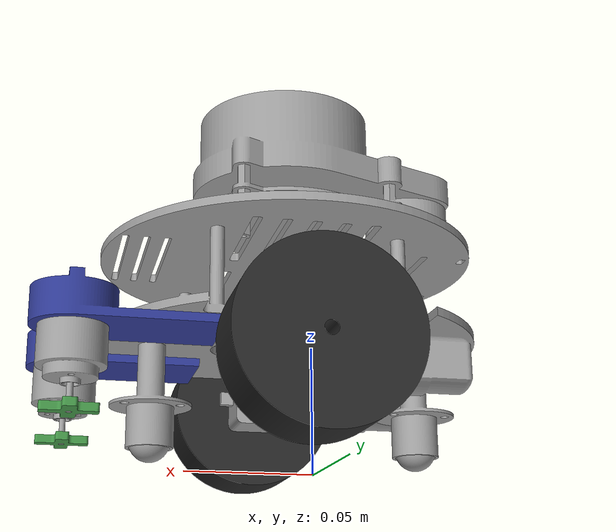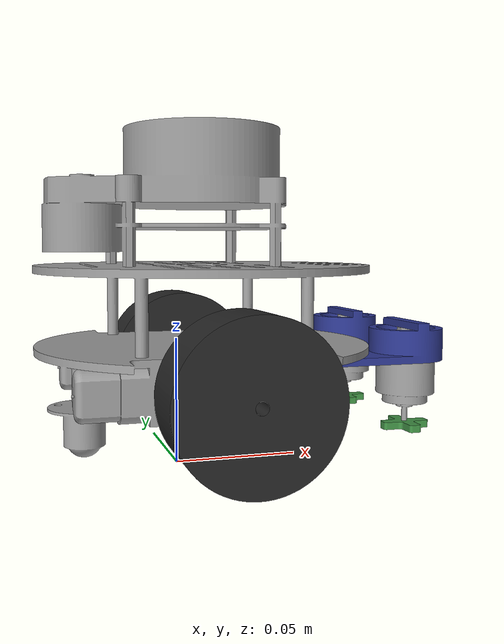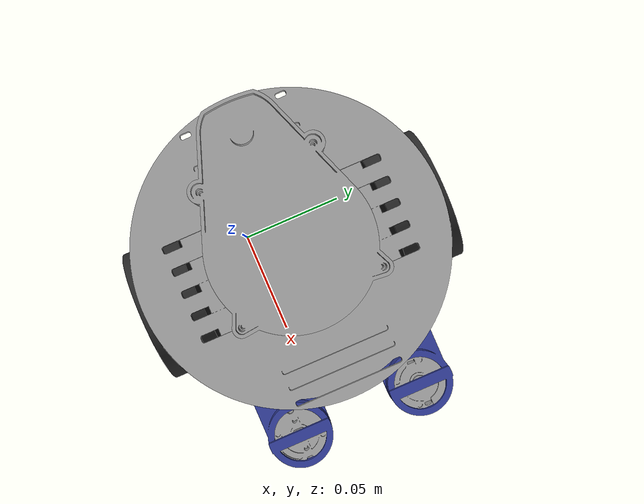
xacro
<?xml version="1.0" ?>
<robot name="auto_clean" xmlns:xacro="http://www.ros.org/wiki/xacro">

<xacro:include filename="$(find auto_clean_description)/urdf/materials.xacro" />
<xacro:include filename="$(find auto_clean_description)/urdf/auto_clean.trans" />
<xacro:include filename="$(find auto_clean_description)/urdf/auto_clean.gazebo" />
<link name="base_link">
  <inertial>
    <origin xyz="-0.0009276695570702301 0.01774999674309802 0.037492237888275465" rpy="0 0 0"/>
    <mass value="0.49621205453581585"/>
    <inertia ixx="0.000708" iyy="0.000415" izz="0.000913" ixy="-0.0" iyz="-0.0" ixz="-4.1e-05"/>
  </inertial>
  <visual>
    <origin xyz="0 0 0" rpy="0 0 0"/>
    <geometry>
      <mesh filename="package://auto_clean_description/meshes/base_link.stl" scale="0.001 0.001 0.001"/>
    </geometry>
    <material name="steel_satin"/>
  </visual>
  <collision>
    <origin xyz="0 0 0" rpy="0 0 0"/>
    <geometry>
      <mesh filename="package://auto_clean_description/meshes/base_link.stl" scale="0.001 0.001 0.001"/>
    </geometry>
  </collision>
</link>

<link name="right_wheel_v1_1">
  <inertial>
    <origin xyz="-2.112893193739751e-15 -0.006249999999999922 2.7755575615628914e-17" rpy="0 0 0"/>
    <mass value="0.0714589021180024"/>
    <inertia ixx="1.9e-05" iyy="2.9e-05" izz="1.9e-05" ixy="0.0" iyz="0.0" ixz="0.0"/>
  </inertial>
  <visual>
    <origin xyz="-0.01725 0.03625 -0.032" rpy="0 0 0"/>
    <geometry>
      <mesh filename="package://auto_clean_description/meshes/right_wheel_v1_1.stl" scale="0.001 0.001 0.001"/>
    </geometry>
    <material name="rubber_hard"/>
  </visual>
  <collision>
    <origin xyz="-0.01725 0.03625 -0.032" rpy="0 0 0"/>
    <geometry>
      <mesh filename="package://auto_clean_description/meshes/right_wheel_v1_1.stl" scale="0.001 0.001 0.001"/>
    </geometry>
  </collision>
</link>

<link name="left_wheel_v1_1">
  <inertial>
    <origin xyz="-2.0643209364124004e-15 0.006249999999999992 6.938893903907228e-18" rpy="0 0 0"/>
    <mass value="0.0714589021180024"/>
    <inertia ixx="1.9e-05" iyy="2.9e-05" izz="1.9e-05" ixy="0.0" iyz="-0.0" ixz="0.0"/>
  </inertial>
  <visual>
    <origin xyz="-0.01725 -0.07175 -0.032" rpy="0 0 0"/>
    <geometry>
      <mesh filename="package://auto_clean_description/meshes/left_wheel_v1_1.stl" scale="0.001 0.001 0.001"/>
    </geometry>
    <material name="rubber_hard"/>
  </visual>
  <collision>
    <origin xyz="-0.01725 -0.07175 -0.032" rpy="0 0 0"/>
    <geometry>
      <mesh filename="package://auto_clean_description/meshes/left_wheel_v1_1.stl" scale="0.001 0.001 0.001"/>
    </geometry>
  </collision>
</link>

<link name="front_Castor_1">
  <inertial>
    <origin xyz="0.050000000000089556 4.764556804648379e-13 -0.0243934019095119" rpy="0 0 0"/>
    <mass value="0.03957987776285164"/>
    <inertia ixx="6e-06" iyy="6e-06" izz="2e-06" ixy="0.0" iyz="-0.0" ixz="-0.0"/>
  </inertial>
  <visual>
    <origin xyz="-0.015 -0.01775 -0.043" rpy="0 0 0"/>
    <geometry>
      <mesh filename="package://auto_clean_description/meshes/front_Castor_1.stl" scale="0.001 0.001 0.001"/>
    </geometry>
    <material name="steel_satin"/>
  </visual>
  <collision>
    <origin xyz="-0.015 -0.01775 -0.043" rpy="0 0 0"/>
    <geometry>
      <mesh filename="package://auto_clean_description/meshes/front_Castor_1.stl" scale="0.001 0.001 0.001"/>
    </geometry>
  </collision>
</link>

<link name="rear_Castor_1">
  <inertial>
    <origin xyz="-0.04999999999991038 4.765007832752133e-13 -0.02439340190951189" rpy="0 0 0"/>
    <mass value="0.03957987776285164"/>
    <inertia ixx="6e-06" iyy="6e-06" izz="2e-06" ixy="0.0" iyz="-0.0" ixz="-0.0"/>
  </inertial>
  <visual>
    <origin xyz="-0.015 -0.01775 -0.043" rpy="0 0 0"/>
    <geometry>
      <mesh filename="package://auto_clean_description/meshes/rear_Castor_1.stl" scale="0.001 0.001 0.001"/>
    </geometry>
    <material name="steel_satin"/>
  </visual>
  <collision>
    <origin xyz="-0.015 -0.01775 -0.043" rpy="0 0 0"/>
    <geometry>
      <mesh filename="package://auto_clean_description/meshes/rear_Castor_1.stl" scale="0.001 0.001 0.001"/>
    </geometry>
  </collision>
</link>

<link name="ydlidar_x4_v1_1">
  <inertial>
    <origin xyz="-0.008294099570319475 -1.0408340855860843e-17 0.035201142222790985" rpy="0 0 0"/>
    <mass value="1.1515616542314233"/>
    <inertia ixx="0.000489" iyy="0.000861" izz="0.000987" ixy="-0.0" iyz="0.0" ixz="-0.000148"/>
  </inertial>
  <visual>
    <origin xyz="-0.015 -0.01775 -0.079" rpy="0 0 0"/>
    <geometry>
      <mesh filename="package://auto_clean_description/meshes/ydlidar_x4_v1_1.stl" scale="0.001 0.001 0.001"/>
    </geometry>
    <material name="steel_satin"/>
  </visual>
  <collision>
    <origin xyz="-0.015 -0.01775 -0.079" rpy="0 0 0"/>
    <geometry>
      <mesh filename="package://auto_clean_description/meshes/ydlidar_x4_v1_1.stl" scale="0.001 0.001 0.001"/>
    </geometry>
  </collision>
</link>

<link name="right_connect_1">
  <inertial>
    <origin xyz="0.06530375868067693 -0.030000000000000023 0.0016078607775464535" rpy="0 0 0"/>
    <mass value="0.00762746048900369"/>
    <inertia ixx="1e-06" iyy="3e-06" izz="3e-06" ixy="0.0" iyz="-0.0" ixz="-0.0"/>
  </inertial>
  <visual>
    <origin xyz="-0.015 -0.01775 -0.043" rpy="0 0 0"/>
    <geometry>
      <mesh filename="package://auto_clean_description/meshes/right_connect_1.stl" scale="0.001 0.001 0.001"/>
    </geometry>
    <material name="paint_enamel_glossy_blue"/>
  </visual>
  <collision>
    <origin xyz="-0.015 -0.01775 -0.043" rpy="0 0 0"/>
    <geometry>
      <mesh filename="package://auto_clean_description/meshes/right_connect_1.stl" scale="0.001 0.001 0.001"/>
    </geometry>
  </collision>
</link>

<link name="left_connect_v2_1">
  <inertial>
    <origin xyz="0.06530375868067693 0.02999999999999996 0.0016078607775464535" rpy="0 0 0"/>
    <mass value="0.00762746048900369"/>
    <inertia ixx="1e-06" iyy="3e-06" izz="3e-06" ixy="0.0" iyz="0.0" ixz="-0.0"/>
  </inertial>
  <visual>
    <origin xyz="-0.015 -0.01775 -0.043" rpy="0 0 0"/>
    <geometry>
      <mesh filename="package://auto_clean_description/meshes/left_connect_v2_1.stl" scale="0.001 0.001 0.001"/>
    </geometry>
    <material name="paint_enamel_glossy_blue"/>
  </visual>
  <collision>
    <origin xyz="-0.015 -0.01775 -0.043" rpy="0 0 0"/>
    <geometry>
      <mesh filename="package://auto_clean_description/meshes/left_connect_v2_1.stl" scale="0.001 0.001 0.001"/>
    </geometry>
  </collision>
</link>

<link name="right_brush_motor_1">
  <inertial>
    <origin xyz="-5.6292957953771317e-05 7.426492519901559e-05 -0.011748993662980753" rpy="0 0 0"/>
    <mass value="0.03635919927939921"/>
    <inertia ixx="4e-06" iyy="4e-06" izz="3e-06" ixy="0.0" iyz="-0.0" ixz="0.0"/>
  </inertial>
  <visual>
    <origin xyz="-0.095 0.01225 -0.053" rpy="0 0 0"/>
    <geometry>
      <mesh filename="package://auto_clean_description/meshes/right_brush_motor_1.stl" scale="0.001 0.001 0.001"/>
    </geometry>
    <material name="steel_satin"/>
  </visual>
  <collision>
    <origin xyz="-0.095 0.01225 -0.053" rpy="0 0 0"/>
    <geometry>
      <mesh filename="package://auto_clean_description/meshes/right_brush_motor_1.stl" scale="0.001 0.001 0.001"/>
    </geometry>
  </collision>
</link>

<link name="left_brush_motor_1">
  <inertial>
    <origin xyz="7.426492519904682e-05 5.6292957953715805e-05 -0.011641764747318109" rpy="0 0 0"/>
    <mass value="0.03635919927939921"/>
    <inertia ixx="4e-06" iyy="4e-06" izz="3e-06" ixy="-0.0" iyz="-0.0" ixz="-0.0"/>
  </inertial>
  <visual>
    <origin xyz="-0.095 -0.04775 -0.053" rpy="0 0 0"/>
    <geometry>
      <mesh filename="package://auto_clean_description/meshes/left_brush_motor_1.stl" scale="0.001 0.001 0.001"/>
    </geometry>
    <material name="steel_satin"/>
  </visual>
  <collision>
    <origin xyz="-0.095 -0.04775 -0.053" rpy="0 0 0"/>
    <geometry>
      <mesh filename="package://auto_clean_description/meshes/left_brush_motor_1.stl" scale="0.001 0.001 0.001"/>
    </geometry>
  </collision>
</link>

<link name="right_brush_1">
  <inertial>
    <origin xyz="-2.9837243786801082e-15 -2.949029909160572e-17 0.0015001581078550406" rpy="0 0 0"/>
    <mass value="0.0005746028265928243"/>
    <inertia ixx="0.0" iyy="0.0" izz="0.0" ixy="0.0" iyz="-0.0" ixz="0.0"/>
  </inertial>
  <visual>
    <origin xyz="-0.095 0.01225 -0.010733" rpy="0 0 0"/>
    <geometry>
      <mesh filename="package://auto_clean_description/meshes/right_brush_1.stl" scale="0.001 0.001 0.001"/>
    </geometry>
    <material name="paint_enamel_glossy_green"/>
  </visual>
  <collision>
    <origin xyz="-0.095 0.01225 -0.010733" rpy="0 0 0"/>
    <geometry>
      <mesh filename="package://auto_clean_description/meshes/right_brush_1.stl" scale="0.001 0.001 0.001"/>
    </geometry>
  </collision>
</link>

<link name="left_brush_1">
  <inertial>
    <origin xyz="-2.9698465908722937e-15 -4.163336342344337e-17 0.0015003870235176867" rpy="0 0 0"/>
    <mass value="0.0005746028265928243"/>
    <inertia ixx="0.0" iyy="0.0" izz="0.0" ixy="0.0" iyz="0.0" ixz="0.0"/>
  </inertial>
  <visual>
    <origin xyz="-0.095 -0.04775 -0.01084" rpy="0 0 0"/>
    <geometry>
      <mesh filename="package://auto_clean_description/meshes/left_brush_1.stl" scale="0.001 0.001 0.001"/>
    </geometry>
    <material name="paint_enamel_glossy_green"/>
  </visual>
  <collision>
    <origin xyz="-0.095 -0.04775 -0.01084" rpy="0 0 0"/>
    <geometry>
      <mesh filename="package://auto_clean_description/meshes/left_brush_1.stl" scale="0.001 0.001 0.001"/>
    </geometry>
  </collision>
</link>

<joint name="right_drive" type="continuous">
  <origin xyz="0.01725 -0.03625 0.032" rpy="0 0 0"/>
  <parent link="base_link"/>
  <child link="right_wheel_v1_1"/>
  <axis xyz="-0.0 1.0 0.0"/>
</joint>

<joint name="left_drive" type="continuous">
  <origin xyz="0.01725 0.07175 0.032" rpy="0 0 0"/>
  <parent link="base_link"/>
  <child link="left_wheel_v1_1"/>
  <axis xyz="0.0 1.0 0.0"/>
</joint>

<joint name="Rigid4" type="fixed">
  <origin xyz="0.015 0.01775 0.043" rpy="0 0 0"/>
  <parent link="base_link"/>
  <child link="front_Castor_1"/>
</joint>

<joint name="Rigid5" type="fixed">
  <origin xyz="0.015 0.01775 0.043" rpy="0 0 0"/>
  <parent link="base_link"/>
  <child link="rear_Castor_1"/>
</joint>

<joint name="Rigid6" type="fixed">
  <origin xyz="0.015 0.01775 0.079" rpy="0 0 0"/>
  <parent link="base_link"/>
  <child link="ydlidar_x4_v1_1"/>
</joint>

<joint name="Rigid7" type="fixed">
  <origin xyz="0.015 0.01775 0.043" rpy="0 0 0"/>
  <parent link="base_link"/>
  <child link="right_connect_1"/>
</joint>

<joint name="Rigid8" type="fixed">
  <origin xyz="0.015 0.01775 0.043" rpy="0 0 0"/>
  <parent link="base_link"/>
  <child link="left_connect_v2_1"/>
</joint>

<joint name="Rigid9" type="fixed">
  <origin xyz="0.08 -0.03 0.01" rpy="0 0 0"/>
  <parent link="right_connect_1"/>
  <child link="right_brush_motor_1"/>
</joint>

<joint name="Rigid10" type="fixed">
  <origin xyz="0.08 0.03 0.01" rpy="0 0 0"/>
  <parent link="left_connect_v2_1"/>
  <child link="left_brush_motor_1"/>
</joint>

<joint name="right_brush" type="continuous">
  <origin xyz="0.0 0.0 -0.042267" rpy="0 0 0"/>
  <parent link="right_brush_motor_1"/>
  <child link="right_brush_1"/>
  <axis xyz="0.0 0.0 -1.0"/>
</joint>

<joint name="left_brush" type="continuous">
  <origin xyz="0.0 0.0 -0.04216" rpy="0 0 0"/>
  <parent link="left_brush_motor_1"/>
  <child link="left_brush_1"/>
  <axis xyz="0.0 0.0 -1.0"/>
</joint>

</robot>

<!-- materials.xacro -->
<robot name="auto_clean" xmlns:xacro="http://www.ros.org/wiki/xacro" >

<material name="silver_default">
  <color rgba="0.700 0.700 0.700 1.000"/>
</material>
<material name="rubber_hard">
  <color rgba="0.15294117647058825 0.15294117647058825 0.15294117647058825 1.0"/>
</material>
<material name="steel_satin">
  <color rgba="0.6274509803921569 0.6274509803921569 0.6274509803921569 1.0"/>
</material>
<material name="paint_enamel_glossy_blue">
  <color rgba="0.18823529411764706 0.23137254901960785 0.5882352941176471 1.0"/>
</material>
<material name="paint_enamel_glossy_green">
  <color rgba="0.26666666666666666 0.5882352941176471 0.2823529411764706 1.0"/>
</material>

</robot>

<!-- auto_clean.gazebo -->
<robot name="auto_clean" xmlns:xacro="http://www.ros.org/wiki/xacro" >

<xacro:property name="body_color" value="Gazebo/Silver" />

<gazebo>
  <plugin name="control" filename="libgazebo_ros_control.so"/>
</gazebo>
<gazebo reference="base_link">
  <material>${body_color}</material>
  <mu1>0.2</mu1>
  <mu2>0.2</mu2>
  <selfCollide>true</selfCollide>
  <gravity>true</gravity>
</gazebo>

<gazebo reference="right_wheel_v1_1">
  <material>${body_color}</material>
  <mu1>100</mu1>
  <mu2>100</mu2>
  <selfCollide>true</selfCollide>
</gazebo>

<gazebo reference="left_wheel_v1_1">
  <material>${body_color}</material>
  <mu1>100</mu1>
  <mu2>100</mu2>
  <selfCollide>true</selfCollide>
</gazebo>

<gazebo reference="front_Castor_1">
  <material>${body_color}</material>
  <mu1>0.2</mu1>
  <mu2>0.2</mu2>
  <selfCollide>true</selfCollide>
</gazebo>

<gazebo reference="rear_Castor_1">
  <material>${body_color}</material>
  <mu1>0.2</mu1>
  <mu2>0.2</mu2>
  <selfCollide>true</selfCollide>
</gazebo>

<gazebo reference="ydlidar_x4_v1_1">
  <material>${body_color}</material>
  <mu1>0.2</mu1>
  <mu2>0.2</mu2>
  <selfCollide>true</selfCollide>
</gazebo>

<gazebo reference="right_connect_1">
  <material>${body_color}</material>
  <mu1>0.2</mu1>
  <mu2>0.2</mu2>
  <selfCollide>true</selfCollide>
</gazebo>

<gazebo reference="left_connect_v2_1">
  <material>${body_color}</material>
  <mu1>0.2</mu1>
  <mu2>0.2</mu2>
  <selfCollide>true</selfCollide>
</gazebo>

<gazebo reference="right_brush_motor_1">
  <material>${body_color}</material>
  <mu1>0.2</mu1>
  <mu2>0.2</mu2>
  <selfCollide>true</selfCollide>
</gazebo>

<gazebo reference="left_brush_motor_1">
  <material>${body_color}</material>
  <mu1>0.2</mu1>
  <mu2>0.2</mu2>
  <selfCollide>true</selfCollide>
</gazebo>

<gazebo reference="right_brush_1">
  <material>${body_color}</material>
  <mu1>0.2</mu1>
  <mu2>0.2</mu2>
  <selfCollide>true</selfCollide>
</gazebo>

<gazebo reference="left_brush_1">
  <material>${body_color}</material>
  <mu1>0.2</mu1>
  <mu2>0.2</mu2>
  <selfCollide>true</selfCollide>
</gazebo>

<!-- hokuyo -->
  <gazebo reference="ydlidar_x4_v1_1">
    <sensor type="ray" name="head_hokuyo_sensor">
      <pose>0 0 0 0 0 0</pose>
      <visualize>true</visualize>
      <update_rate>40</update_rate>
      <ray>
        <scan>
          <horizontal>
            <samples>720</samples>
            <resolution>1</resolution>
            <min_angle>-3.141528</min_angle>
            <max_angle>3.141528</max_angle>
          </horizontal>
        </scan>
        <range>
          <min>0.20</min>
          <max>8.0</max>
          <resolution>0.05</resolution>
        </range>
        <noise>
          <type>gaussian</type>
          <mean>0.0</mean>
          <stddev>0.01</stddev>
        </noise>
      </ray>
      <plugin name="gazebo_ros_head_hokuyo_controller" filename="libgazebo_ros_laser.so">
        <topicName>/scan</topicName>
        <frameName>ydlidar_x4_v1_1</frameName>
      </plugin>
    </sensor>
  </gazebo>

<gazebo>
  <plugin name="differential_drive_controller" filename="libgazebo_ros_diff_drive.so">

    <!-- Plugin update rate in Hz -->
    <updateRate>20</updateRate>

    <!-- Name of left joint, defaults to `left_joint` -->
    <leftJoint>left_drive</leftJoint>

    <!-- Name of right joint, defaults to `right_joint` -->
    <rightJoint>right_drive</rightJoint>

    <!-- The distance from the center of one wheel to the other, in meters, defaults to 0.34 m -->
    <wheelSeparation>0.5380</wheelSeparation>

    <!-- Diameter of the wheels, in meters, defaults to 0.15 m -->
    <wheelDiameter>0.2410</wheelDiameter>

    <!-- Wheel acceleration, in rad/s^2, defaults to 0.0 rad/s^2 -->
    <wheelAcceleration>1.0</wheelAcceleration>

    <!-- Maximum torque which the wheels can produce, in Nm, defaults to 5 Nm -->
    <wheelTorque>20</wheelTorque>

    <!-- Topic to receive geometry_msgs/Twist message commands, defaults to `cmd_vel` -->
    <commandTopic>cmd_vel</commandTopic>

    <!-- Topic to publish nav_msgs/Odometry messages, defaults to `odom` -->
    <odometryTopic>odom</odometryTopic>

    <!-- Odometry frame, defaults to `odom` -->
    <odometryFrame>odom</odometryFrame>

    <!-- Robot frame to calculate odometry from, defaults to `base_footprint` -->
    <robotBaseFrame>base_link</robotBaseFrame>

    <!-- Odometry source, 0 for ENCODER, 1 for WORLD, defaults to WORLD -->
    <odometrySource>1</odometrySource>

    <!-- Set to true to publish transforms for the wheel links, defaults to false -->
    <publishWheelTF>true</publishWheelTF>

    <!-- Set to true to publish transforms for the odometry, defaults to true -->
    <publishOdom>true</publishOdom>

    <!-- Set to true to publish sensor_msgs/JointState on /joint_states for the wheel joints, defaults to false -->
    <publishWheelJointState>false</publishWheelJointState>

    <!-- Set to true to swap right and left wheels, defaults to true -->
    <legacyMode>false</legacyMode>
  </plugin>
</gazebo>

</robot>
